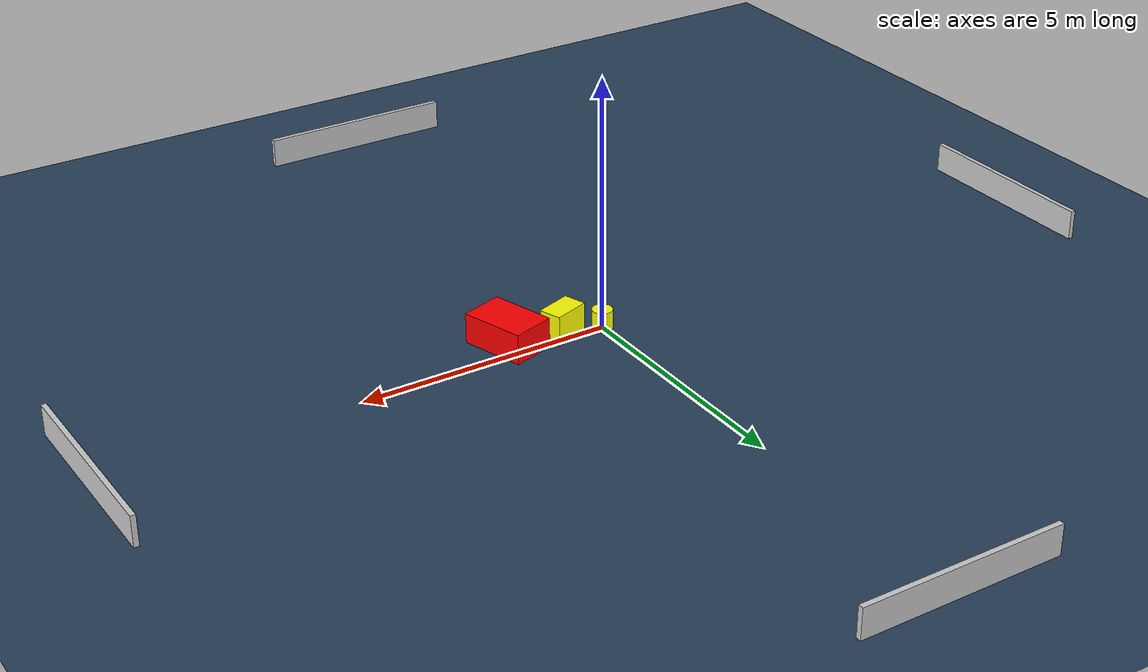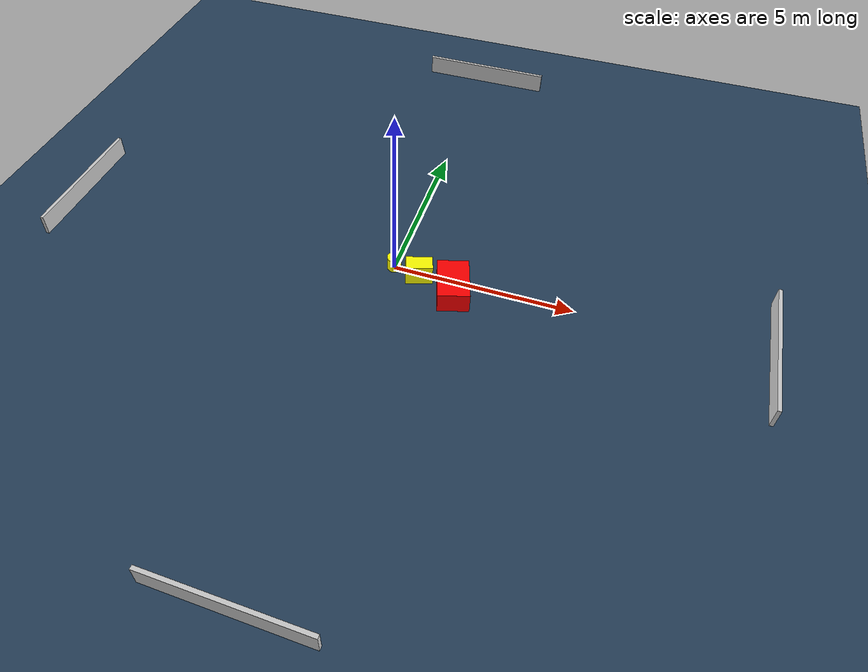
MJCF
<?xml version="1.0" ?>
<mujoco model="generated_environment">
  <option timestep="0.01" integrator="RK4" cone="elliptic"/>
  <default>
    <geom density="1"/>
  </default>
  <asset>
    <texture builtin="gradient" height="3072" name="skybox" rgb1="0.3 0.5 0.7" rgb2="0 0 0" type="skybox" width="512"/>
    <texture builtin="checker" height="300" name="groundplane" rgb1="0.2 0.3 0.4" rgb2="0.1 0.2 0.3" type="2d" width="300"/>
    <material name="groundplane" reflectance="0.2" texrepeat="5 5" texture="groundplane"/>
  </asset>
  <worldbody>
    <light dir="0 0 -1" directional="true" pos="0 0 1.5"/>
    <geom condim="3" friction="0.5 0.005 0.001" material="groundplane" name="floor" pos="0 0 0" size="0 0 0.05" type="plane"/>
    <body name="walls">
      <geom name="wall_1" condim="4" pos="-10.0 0.0 0.3" rgba="0.800000011920929 0.800000011920929 0.800000011920929 1.0" size="0.05 2.0 0.3" type="box"/>
      <geom name="wall_2" condim="4" pos="10.0 0.0 0.3" rgba="0.800000011920929 0.800000011920929 0.800000011920929 1.0" size="0.05 2.0 0.3" type="box"/>
      <geom name="wall_3" condim="4" pos="0.0 -10.0 0.3" rgba="0.800000011920929 0.800000011920929 0.800000011920929 1.0" size="2.0 0.05 0.3" type="box"/>
      <geom name="wall_4" condim="4" pos="0.0 10.0 0.3" rgba="0.800000011920929 0.800000011920929 0.800000011920929 1.0" size="2.0 0.05 0.3" type="box"/>
    </body>
    <body name="robot">
      <joint name="joint_x" type="slide" pos="0 0 0" axis="1 0 0"/>
      <joint name="joint_y" type="slide" pos="0 0 0" axis="0 1 0"/>
      <geom name="robot" type="cylinder" pos="0.0 0.0 0.2" size="0.2 0.2 0.0" mass="5.0" friction="1.0 0.005 0.0001" condim="4" rgba="1.0 1.0 0.0 1.0"/>
    </body>
    <body name="obstacle_1_movable">
      <geom name="obstacle_1_movable" condim="4" pos="0.7661736097375162 -0.16557330617959135 0.3" euler="0 0 198.66556635456195" friction="0.0 0.005 0.001" rgba="1.0 1.0 0.0 1.0" size="0.36805431608114547 0.2251550265086838 0.3" type="box" mass="0.1"/>
      <joint type="free"/>
    </body>
    <body name="obstacle_2_static">
      <geom name="obstacle_2_static" condim="4" pos="1.8014207975288998 -0.4107225705114371 0.3" euler="0 0 197.14716570263764" friction="0.0 0.005 0.001" rgba="1.0 0.0 0.0 1.0" size="0.4297370388561881 0.6480756411257749 0.3" type="box"/>
    </body>
  </worldbody>
  <actuator>
    <motor name="actuator_x" joint="joint_x" gear="1" ctrlrange="-1 1"/>
    <motor name="actuator_y" joint="joint_y" gear="1" ctrlrange="-1 1"/>
  </actuator>
</mujoco>
